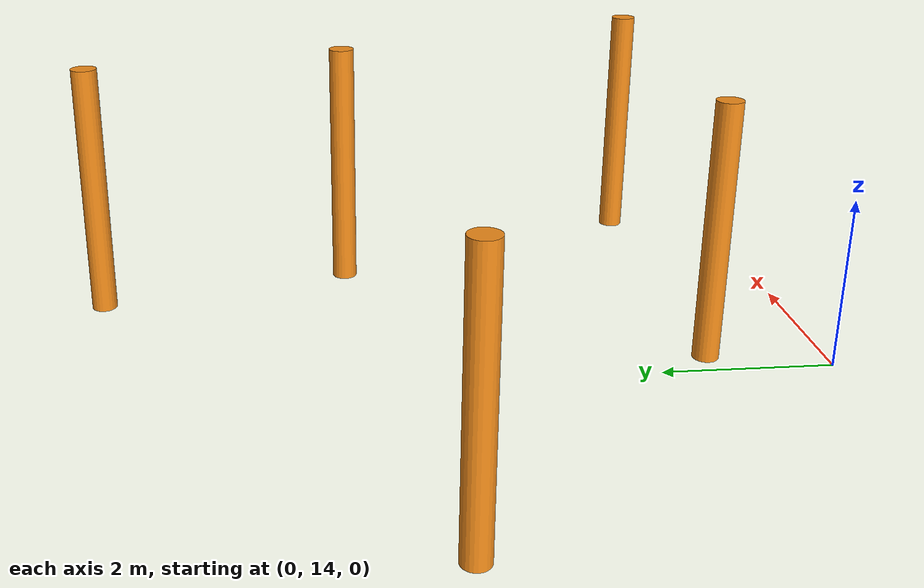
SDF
<sdf version="1.6">
 <model name="Skog">
  <link name="link_1_clone_13">
   <inertial>
    <mass>1</mass>
    <inertia><ixx>0.145833</ixx><ixy>0</ixy><ixz>0</ixz><iyy>0.145833</iyy><iyz>0</iyz><izz>0.125</izz></inertia>
   </inertial>
   <pose>9.79022 13.9959 0 0 -0 0</pose>
   <visual name="visual">
    <geometry><cylinder><radius>0.2</radius><length>4</length></cylinder></geometry>
    <material>
     <lighting>1</lighting>
     <script><uri>file://media/materials/scripts/gazebo.material</uri><name>Gazebo/Orange</name></script>
     <shader type="vertex"><normal_map>__default__</normal_map></shader>
     <ambient>0.3 0.3 0.3 1</ambient>
     <diffuse>0.7 0.7 0.7 1</diffuse>
     <specular>0.01 0.01 0.01 1</specular>
     <emissive>0 0 0 1</emissive>
    </material>
   </visual>
   <collision name="collision">
    <geometry><cylinder><radius>0.2</radius><length>4</length></cylinder></geometry>
    <surface>
     <friction>
      <ode><mu>1</mu><mu2>1</mu2><fdir1>0 0 0</fdir1><slip1>0</slip1><slip2>0</slip2></ode>
      <torsional>
       <coefficient>1</coefficient>
       <patch_radius>0</patch_radius>
       <surface_radius>0</surface_radius>
       <use_patch_radius>1</use_patch_radius>
       <ode><slip>0</slip></ode>
      </torsional>
     </friction>
     <bounce><restitution_coefficient>0</restitution_coefficient><threshold>1e+06</threshold></bounce>
     <contact>
      <collide_without_contact>0</collide_without_contact>
      <collide_without_contact_bitmask>1</collide_without_contact_bitmask>
      <collide_bitmask>1</collide_bitmask>
      <ode>
       <soft_cfm>0</soft_cfm>
       <soft_erp>0.2</soft_erp>
       <kp>1e+13</kp>
       <kd>1</kd>
       <max_vel>0.01</max_vel>
       <min_depth>0</min_depth>
      </ode>
      <bullet>
       <split_impulse>1</split_impulse>
       <split_impulse_penetration_threshold>-0.01</split_impulse_penetration_threshold>
       <soft_cfm>0</soft_cfm>
       <soft_erp>0.2</soft_erp>
       <kp>1e+13</kp>
       <kd>1</kd>
      </bullet>
     </contact>
    </surface>
   </collision>
  </link>
  <link name="link_1_clone_26">
   <inertial>
    <mass>1</mass>
    <inertia><ixx>0.145833</ixx><ixy>0</ixy><ixz>0</ixz><iyy>0.145833</iyy><iyz>0</iyz><izz>0.125</izz></inertia>
   </inertial>
   <pose>7.73107 19.2276 0 0 -0 0</pose>
   <visual name="visual">
    <geometry><cylinder><radius>0.2</radius><length>4</length></cylinder></geometry>
    <material>
     <lighting>1</lighting>
     <script><uri>file://media/materials/scripts/gazebo.material</uri><name>Gazebo/Orange</name></script>
     <shader type="vertex"><normal_map>__default__</normal_map></shader>
     <ambient>0.3 0.3 0.3 1</ambient>
     <diffuse>0.7 0.7 0.7 1</diffuse>
     <specular>0.01 0.01 0.01 1</specular>
     <emissive>0 0 0 1</emissive>
    </material>
   </visual>
   <collision name="collision">
    <geometry><cylinder><radius>0.2</radius><length>4</length></cylinder></geometry>
    <surface>
     <friction>
      <ode><mu>1</mu><mu2>1</mu2><fdir1>0 0 0</fdir1><slip1>0</slip1><slip2>0</slip2></ode>
      <torsional>
       <coefficient>1</coefficient>
       <patch_radius>0</patch_radius>
       <surface_radius>0</surface_radius>
       <use_patch_radius>1</use_patch_radius>
       <ode><slip>0</slip></ode>
      </torsional>
     </friction>
     <bounce><restitution_coefficient>0</restitution_coefficient><threshold>1e+06</threshold></bounce>
     <contact>
      <collide_without_contact>0</collide_without_contact>
      <collide_without_contact_bitmask>1</collide_without_contact_bitmask>
      <collide_bitmask>1</collide_bitmask>
      <ode>
       <soft_cfm>0</soft_cfm>
       <soft_erp>0.2</soft_erp>
       <kp>1e+13</kp>
       <kd>1</kd>
       <max_vel>0.01</max_vel>
       <min_depth>0</min_depth>
      </ode>
      <bullet>
       <split_impulse>1</split_impulse>
       <split_impulse_penetration_threshold>-0.01</split_impulse_penetration_threshold>
       <soft_cfm>0</soft_cfm>
       <soft_erp>0.2</soft_erp>
       <kp>1e+13</kp>
       <kd>1</kd>
      </bullet>
     </contact>
    </surface>
   </collision>
  </link>
  <link name="link_1_clone_27">
   <inertial>
    <mass>1</mass>
    <inertia><ixx>0.145833</ixx><ixy>0</ixy><ixz>0</ixz><iyy>0.145833</iyy><iyz>0</iyz><izz>0.125</izz></inertia>
   </inertial>
   <pose>-0.590113 18.1705 0 0 -0 0</pose>
   <visual name="visual">
    <geometry><cylinder><radius>0.2</radius><length>4</length></cylinder></geometry>
    <material>
     <lighting>1</lighting>
     <script><uri>file://media/materials/scripts/gazebo.material</uri><name>Gazebo/Orange</name></script>
     <shader type="vertex"><normal_map>__default__</normal_map></shader>
     <ambient>0.3 0.3 0.3 1</ambient>
     <diffuse>0.7 0.7 0.7 1</diffuse>
     <specular>0.01 0.01 0.01 1</specular>
     <emissive>0 0 0 1</emissive>
    </material>
   </visual>
   <collision name="collision">
    <geometry><cylinder><radius>0.2</radius><length>4</length></cylinder></geometry>
    <surface>
     <friction>
      <ode><mu>1</mu><mu2>1</mu2><fdir1>0 0 0</fdir1><slip1>0</slip1><slip2>0</slip2></ode>
      <torsional>
       <coefficient>1</coefficient>
       <patch_radius>0</patch_radius>
       <surface_radius>0</surface_radius>
       <use_patch_radius>1</use_patch_radius>
       <ode><slip>0</slip></ode>
      </torsional>
     </friction>
     <bounce><restitution_coefficient>0</restitution_coefficient><threshold>1e+06</threshold></bounce>
     <contact>
      <collide_without_contact>0</collide_without_contact>
      <collide_without_contact_bitmask>1</collide_without_contact_bitmask>
      <collide_bitmask>1</collide_bitmask>
      <ode>
       <soft_cfm>0</soft_cfm>
       <soft_erp>0.2</soft_erp>
       <kp>1e+13</kp>
       <kd>1</kd>
       <max_vel>0.01</max_vel>
       <min_depth>0</min_depth>
      </ode>
      <bullet>
       <split_impulse>1</split_impulse>
       <split_impulse_penetration_threshold>-0.01</split_impulse_penetration_threshold>
       <soft_cfm>0</soft_cfm>
       <soft_erp>0.2</soft_erp>
       <kp>1e+13</kp>
       <kd>1</kd>
      </bullet>
     </contact>
    </surface>
   </collision>
  </link>
  <link name="link_1_clone_62">
   <inertial>
    <mass>1</mass>
    <inertia><ixx>0.145833</ixx><ixy>0</ixy><ixz>0</ixz><iyy>0.145833</iyy><iyz>0</iyz><izz>0.125</izz></inertia>
   </inertial>
   <pose>6.74614 23.223 0 0 -0 0</pose>
   <visual name="visual">
    <geometry><cylinder><radius>0.2</radius><length>4</length></cylinder></geometry>
    <material>
     <lighting>1</lighting>
     <script><uri>file://media/materials/scripts/gazebo.material</uri><name>Gazebo/Orange</name></script>
     <shader type="vertex"><normal_map>__default__</normal_map></shader>
     <ambient>0.3 0.3 0.3 1</ambient>
     <diffuse>0.7 0.7 0.7 1</diffuse>
     <specular>0.01 0.01 0.01 1</specular>
     <emissive>0 0 0 1</emissive>
    </material>
   </visual>
   <collision name="collision">
    <geometry><cylinder><radius>0.2</radius><length>4</length></cylinder></geometry>
    <surface>
     <friction>
      <ode><mu>1</mu><mu2>1</mu2><fdir1>0 0 0</fdir1><slip1>0</slip1><slip2>0</slip2></ode>
      <torsional>
       <coefficient>1</coefficient>
       <patch_radius>0</patch_radius>
       <surface_radius>0</surface_radius>
       <use_patch_radius>1</use_patch_radius>
       <ode><slip>0</slip></ode>
      </torsional>
     </friction>
     <bounce><restitution_coefficient>0</restitution_coefficient><threshold>1e+06</threshold></bounce>
     <contact>
      <collide_without_contact>0</collide_without_contact>
      <collide_without_contact_bitmask>1</collide_without_contact_bitmask>
      <collide_bitmask>1</collide_bitmask>
      <ode>
       <soft_cfm>0</soft_cfm>
       <soft_erp>0.2</soft_erp>
       <kp>1e+13</kp>
       <kd>1</kd>
       <max_vel>0.01</max_vel>
       <min_depth>0</min_depth>
      </ode>
      <bullet>
       <split_impulse>1</split_impulse>
       <split_impulse_penetration_threshold>-0.01</split_impulse_penetration_threshold>
       <soft_cfm>0</soft_cfm>
       <soft_erp>0.2</soft_erp>
       <kp>1e+13</kp>
       <kd>1</kd>
      </bullet>
     </contact>
    </surface>
   </collision>
  </link>
  <link name="link_1_clone_9">
   <inertial>
    <mass>1</mass>
    <inertia><ixx>0.145833</ixx><ixy>0</ixy><ixz>0</ixz><iyy>0.145833</iyy><iyz>0</iyz><izz>0.125</izz></inertia>
   </inertial>
   <pose>4.1194 13.9665 0 0 -0 0</pose>
   <visual name="visual">
    <geometry><cylinder><radius>0.2</radius><length>4</length></cylinder></geometry>
    <material>
     <lighting>1</lighting>
     <script><uri>file://media/materials/scripts/gazebo.material</uri><name>Gazebo/Orange</name></script>
     <shader type="vertex"><normal_map>__default__</normal_map></shader>
     <ambient>0.3 0.3 0.3 1</ambient>
     <diffuse>0.7 0.7 0.7 1</diffuse>
     <specular>0.01 0.01 0.01 1</specular>
     <emissive>0 0 0 1</emissive>
    </material>
   </visual>
   <collision name="collision">
    <geometry><cylinder><radius>0.2</radius><length>4</length></cylinder></geometry>
    <surface>
     <friction>
      <ode><mu>1</mu><mu2>1</mu2><fdir1>0 0 0</fdir1><slip1>0</slip1><slip2>0</slip2></ode>
      <torsional>
       <coefficient>1</coefficient>
       <patch_radius>0</patch_radius>
       <surface_radius>0</surface_radius>
       <use_patch_radius>1</use_patch_radius>
       <ode><slip>0</slip></ode>
      </torsional>
     </friction>
     <bounce><restitution_coefficient>0</restitution_coefficient><threshold>1e+06</threshold></bounce>
     <contact>
      <collide_without_contact>0</collide_without_contact>
      <collide_without_contact_bitmask>1</collide_without_contact_bitmask>
      <collide_bitmask>1</collide_bitmask>
      <ode>
       <soft_cfm>0</soft_cfm>
       <soft_erp>0.2</soft_erp>
       <kp>1e+13</kp>
       <kd>1</kd>
       <max_vel>0.01</max_vel>
       <min_depth>0</min_depth>
      </ode>
      <bullet>
       <split_impulse>1</split_impulse>
       <split_impulse_penetration_threshold>-0.01</split_impulse_penetration_threshold>
       <soft_cfm>0</soft_cfm>
       <soft_erp>0.2</soft_erp>
       <kp>1e+13</kp>
       <kd>1</kd>
      </bullet>
     </contact>
    </surface>
   </collision>
  </link>
  <static>0</static>
 </model>
</sdf>
